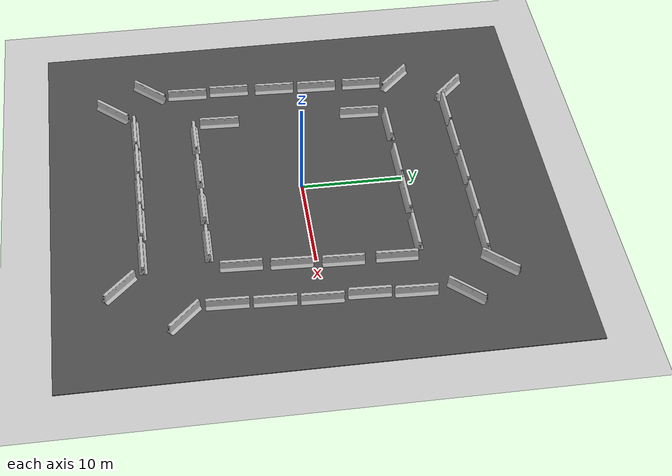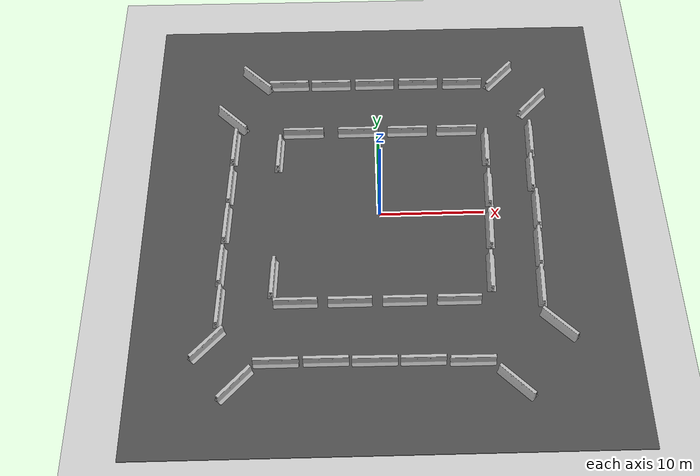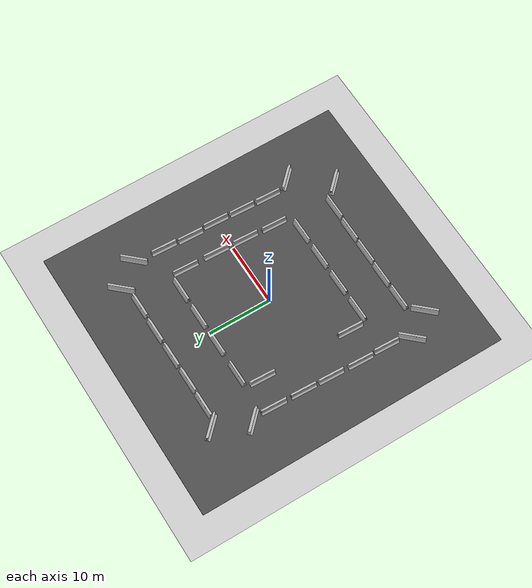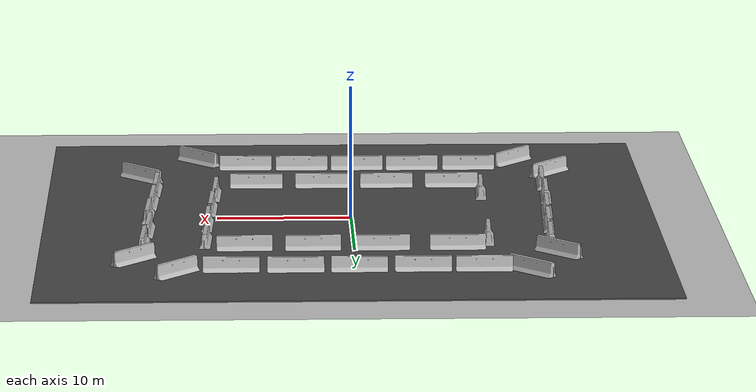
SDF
<sdf version="1.6">
 <world name="default">
  <light name="sun" type="directional">
   <pose>0 0 10 0 -0 0</pose>
   <diffuse>0.8 0.8 0.8 1</diffuse>
   <specular>0.2 0.2 0.2 1</specular>
   <attenuation>
    <range>1000</range>
    <constant>0.9</constant>
    <linear>0.01</linear>
    <quadratic>0.001</quadratic>
   </attenuation>
   <direction>-0.5 0.1 -0.9</direction>
  </light>
  <model name="ground_plane">
   <static>1</static>
   <link name="link">
    <collision name="collision">
     <geometry><plane><normal>0 0 1</normal><size>100 100</size></plane></geometry>
     <surface><friction><ode><mu>100</mu><mu2>50</mu2></ode></friction></surface>
    </collision>
    <visual name="visual">
     <cast_shadows>0</cast_shadows>
     <geometry><plane><normal>0 0 1</normal><size>100 100</size></plane></geometry>
     <material>
      <script><uri>file://media/materials/scripts/gazebo.material</uri><name>Gazebo/Grey</name></script>
     </material>
    </visual>
    <velocity_decay><linear>0</linear><angular>0</angular></velocity_decay>
   </link>
  </model>
  <physics name="default_physics" default="0" type="ode">
   <max_step_size>0.01</max_step_size>
   <real_time_factor>1</real_time_factor>
   <real_time_update_rate>100</real_time_update_rate>
  </physics>
  <scene><ambient>0.4 0.4 0.4 1</ambient><background>0.7 0.7 0.7 1</background><shadows>1</shadows></scene>
  <model name="jersey_barrier">
   <static>1</static>
   <link name="link">
    <visual name="visual">
     <geometry><mesh><uri>model://jersey_barrier/meshes/jersey_barrier.dae</uri></mesh></geometry>
    </visual>
    <collision name="upright">
     <pose>0 0 0.5715 0 -0 0</pose>
     <geometry><box><size>4.06542 0.3063 1.143</size></box></geometry>
    </collision>
    <collision name="base">
     <pose>0 0 0.032258 0 -0 0</pose>
     <geometry><box><size>4.06542 0.8107 0.064516</size></box></geometry>
    </collision>
    <collision name="base2">
     <pose>0 0 0.1 0 -0 0</pose>
     <geometry><box><size>4.06542 0.65 0.1</size></box></geometry>
    </collision>
    <collision name="base3">
     <pose>0 0 0.2 0 -0 0</pose>
     <geometry><box><size>4.06542 0.5 0.1</size></box></geometry>
    </collision>
    <collision name="left-angle">
     <pose>0 -0.224 0.2401 0.9 -0 0</pose>
     <geometry><box><size>4.06542 0.5 0.064516</size></box></geometry>
    </collision>
    <collision name="right-angle">
     <pose>0 0.224 0.2401 -0.9 0 0</pose>
     <geometry><box><size>4.06542 0.5 0.064516</size></box></geometry>
    </collision>
    <velocity_decay><linear>0</linear><angular>0</angular></velocity_decay>
   </link>
   <pose>-8 -10 0 0 -0 0</pose>
  </model>
  <model name="jersey_barrier_0">
   <static>1</static>
   <link name="link">
    <visual name="visual">
     <geometry><mesh><uri>model://jersey_barrier/meshes/jersey_barrier.dae</uri></mesh></geometry>
    </visual>
    <collision name="upright">
     <pose>0 0 0.5715 0 -0 0</pose>
     <geometry><box><size>4.06542 0.3063 1.143</size></box></geometry>
    </collision>
    <collision name="base">
     <pose>0 0 0.032258 0 -0 0</pose>
     <geometry><box><size>4.06542 0.8107 0.064516</size></box></geometry>
    </collision>
    <collision name="base2">
     <pose>0 0 0.1 0 -0 0</pose>
     <geometry><box><size>4.06542 0.65 0.1</size></box></geometry>
    </collision>
    <collision name="base3">
     <pose>0 0 0.2 0 -0 0</pose>
     <geometry><box><size>4.06542 0.5 0.1</size></box></geometry>
    </collision>
    <collision name="left-angle">
     <pose>0 -0.224 0.2401 0.9 -0 0</pose>
     <geometry><box><size>4.06542 0.5 0.064516</size></box></geometry>
    </collision>
    <collision name="right-angle">
     <pose>0 0.224 0.2401 -0.9 0 0</pose>
     <geometry><box><size>4.06542 0.5 0.064516</size></box></geometry>
    </collision>
    <velocity_decay><linear>0</linear><angular>0</angular></velocity_decay>
   </link>
   <pose>-3 -10 0 0 -0 0</pose>
  </model>
  <model name="jersey_barrier_1">
   <static>1</static>
   <link name="link">
    <visual name="visual">
     <geometry><mesh><uri>model://jersey_barrier/meshes/jersey_barrier.dae</uri></mesh></geometry>
    </visual>
    <collision name="upright">
     <pose>0 0 0.5715 0 -0 0</pose>
     <geometry><box><size>4.06542 0.3063 1.143</size></box></geometry>
    </collision>
    <collision name="base">
     <pose>0 0 0.032258 0 -0 0</pose>
     <geometry><box><size>4.06542 0.8107 0.064516</size></box></geometry>
    </collision>
    <collision name="base2">
     <pose>0 0 0.1 0 -0 0</pose>
     <geometry><box><size>4.06542 0.65 0.1</size></box></geometry>
    </collision>
    <collision name="base3">
     <pose>0 0 0.2 0 -0 0</pose>
     <geometry><box><size>4.06542 0.5 0.1</size></box></geometry>
    </collision>
    <collision name="left-angle">
     <pose>0 -0.224 0.2401 0.9 -0 0</pose>
     <geometry><box><size>4.06542 0.5 0.064516</size></box></geometry>
    </collision>
    <collision name="right-angle">
     <pose>0 0.224 0.2401 -0.9 0 0</pose>
     <geometry><box><size>4.06542 0.5 0.064516</size></box></geometry>
    </collision>
    <velocity_decay><linear>0</linear><angular>0</angular></velocity_decay>
   </link>
   <pose>2 -10 0 0 -0 0</pose>
  </model>
  <model name="jersey_barrier_2">
   <static>1</static>
   <link name="link">
    <visual name="visual">
     <geometry><mesh><uri>model://jersey_barrier/meshes/jersey_barrier.dae</uri></mesh></geometry>
    </visual>
    <collision name="upright">
     <pose>0 0 0.5715 0 -0 0</pose>
     <geometry><box><size>4.06542 0.3063 1.143</size></box></geometry>
    </collision>
    <collision name="base">
     <pose>0 0 0.032258 0 -0 0</pose>
     <geometry><box><size>4.06542 0.8107 0.064516</size></box></geometry>
    </collision>
    <collision name="base2">
     <pose>0 0 0.1 0 -0 0</pose>
     <geometry><box><size>4.06542 0.65 0.1</size></box></geometry>
    </collision>
    <collision name="base3">
     <pose>0 0 0.2 0 -0 0</pose>
     <geometry><box><size>4.06542 0.5 0.1</size></box></geometry>
    </collision>
    <collision name="left-angle">
     <pose>0 -0.224 0.2401 0.9 -0 0</pose>
     <geometry><box><size>4.06542 0.5 0.064516</size></box></geometry>
    </collision>
    <collision name="right-angle">
     <pose>0 0.224 0.2401 -0.9 0 0</pose>
     <geometry><box><size>4.06542 0.5 0.064516</size></box></geometry>
    </collision>
    <velocity_decay><linear>0</linear><angular>0</angular></velocity_decay>
   </link>
   <pose>7 -10 0 0 -0 0</pose>
  </model>
  <model name="jersey_barrier_3">
   <static>1</static>
   <link name="link">
    <visual name="visual">
     <geometry><mesh><uri>model://jersey_barrier/meshes/jersey_barrier.dae</uri></mesh></geometry>
    </visual>
    <collision name="upright">
     <pose>0 0 0.5715 0 -0 0</pose>
     <geometry><box><size>4.06542 0.3063 1.143</size></box></geometry>
    </collision>
    <collision name="base">
     <pose>0 0 0.032258 0 -0 0</pose>
     <geometry><box><size>4.06542 0.8107 0.064516</size></box></geometry>
    </collision>
    <collision name="base2">
     <pose>0 0 0.1 0 -0 0</pose>
     <geometry><box><size>4.06542 0.65 0.1</size></box></geometry>
    </collision>
    <collision name="base3">
     <pose>0 0 0.2 0 -0 0</pose>
     <geometry><box><size>4.06542 0.5 0.1</size></box></geometry>
    </collision>
    <collision name="left-angle">
     <pose>0 -0.224 0.2401 0.9 -0 0</pose>
     <geometry><box><size>4.06542 0.5 0.064516</size></box></geometry>
    </collision>
    <collision name="right-angle">
     <pose>0 0.224 0.2401 -0.9 0 0</pose>
     <geometry><box><size>4.06542 0.5 0.064516</size></box></geometry>
    </collision>
    <velocity_decay><linear>0</linear><angular>0</angular></velocity_decay>
   </link>
   <pose>-7.50675 10 0 0 -0 0</pose>
  </model>
  <model name="jersey_barrier_4">
   <static>1</static>
   <link name="link">
    <visual name="visual">
     <geometry><mesh><uri>model://jersey_barrier/meshes/jersey_barrier.dae</uri></mesh></geometry>
    </visual>
    <collision name="upright">
     <pose>0 0 0.5715 0 -0 0</pose>
     <geometry><box><size>4.06542 0.3063 1.143</size></box></geometry>
    </collision>
    <collision name="base">
     <pose>0 0 0.032258 0 -0 0</pose>
     <geometry><box><size>4.06542 0.8107 0.064516</size></box></geometry>
    </collision>
    <collision name="base2">
     <pose>0 0 0.1 0 -0 0</pose>
     <geometry><box><size>4.06542 0.65 0.1</size></box></geometry>
    </collision>
    <collision name="base3">
     <pose>0 0 0.2 0 -0 0</pose>
     <geometry><box><size>4.06542 0.5 0.1</size></box></geometry>
    </collision>
    <collision name="left-angle">
     <pose>0 -0.224 0.2401 0.9 -0 0</pose>
     <geometry><box><size>4.06542 0.5 0.064516</size></box></geometry>
    </collision>
    <collision name="right-angle">
     <pose>0 0.224 0.2401 -0.9 0 0</pose>
     <geometry><box><size>4.06542 0.5 0.064516</size></box></geometry>
    </collision>
    <velocity_decay><linear>0</linear><angular>0</angular></velocity_decay>
   </link>
   <pose>-2 10 0 0 -0 0</pose>
  </model>
  <model name="jersey_barrier_5">
   <static>1</static>
   <link name="link">
    <visual name="visual">
     <geometry><mesh><uri>model://jersey_barrier/meshes/jersey_barrier.dae</uri></mesh></geometry>
    </visual>
    <collision name="upright">
     <pose>0 0 0.5715 0 -0 0</pose>
     <geometry><box><size>4.06542 0.3063 1.143</size></box></geometry>
    </collision>
    <collision name="base">
     <pose>0 0 0.032258 0 -0 0</pose>
     <geometry><box><size>4.06542 0.8107 0.064516</size></box></geometry>
    </collision>
    <collision name="base2">
     <pose>0 0 0.1 0 -0 0</pose>
     <geometry><box><size>4.06542 0.65 0.1</size></box></geometry>
    </collision>
    <collision name="base3">
     <pose>0 0 0.2 0 -0 0</pose>
     <geometry><box><size>4.06542 0.5 0.1</size></box></geometry>
    </collision>
    <collision name="left-angle">
     <pose>0 -0.224 0.2401 0.9 -0 0</pose>
     <geometry><box><size>4.06542 0.5 0.064516</size></box></geometry>
    </collision>
    <collision name="right-angle">
     <pose>0 0.224 0.2401 -0.9 0 0</pose>
     <geometry><box><size>4.06542 0.5 0.064516</size></box></geometry>
    </collision>
    <velocity_decay><linear>0</linear><angular>0</angular></velocity_decay>
   </link>
   <pose>3 10 0 0 -0 0</pose>
  </model>
  <model name="jersey_barrier_6">
   <static>1</static>
   <link name="link">
    <visual name="visual">
     <geometry><mesh><uri>model://jersey_barrier/meshes/jersey_barrier.dae</uri></mesh></geometry>
    </visual>
    <collision name="upright">
     <pose>0 0 0.5715 0 -0 0</pose>
     <geometry><box><size>4.06542 0.3063 1.143</size></box></geometry>
    </collision>
    <collision name="base">
     <pose>0 0 0.032258 0 -0 0</pose>
     <geometry><box><size>4.06542 0.8107 0.064516</size></box></geometry>
    </collision>
    <collision name="base2">
     <pose>0 0 0.1 0 -0 0</pose>
     <geometry><box><size>4.06542 0.65 0.1</size></box></geometry>
    </collision>
    <collision name="base3">
     <pose>0 0 0.2 0 -0 0</pose>
     <geometry><box><size>4.06542 0.5 0.1</size></box></geometry>
    </collision>
    <collision name="left-angle">
     <pose>0 -0.224 0.2401 0.9 -0 0</pose>
     <geometry><box><size>4.06542 0.5 0.064516</size></box></geometry>
    </collision>
    <collision name="right-angle">
     <pose>0 0.224 0.2401 -0.9 0 0</pose>
     <geometry><box><size>4.06542 0.5 0.064516</size></box></geometry>
    </collision>
    <velocity_decay><linear>0</linear><angular>0</angular></velocity_decay>
   </link>
   <pose>8 10 0 0 -0 0</pose>
  </model>
  <model name="asphalt_plane">
   <static>1</static>
   <link name="link">
    <collision name="collision"><geometry><box><size>45.6368 49.6066 0.1</size></box></geometry></collision>
    <visual name="visual">
     <cast_shadows>0</cast_shadows>
     <geometry><box><size>45.6368 49.6066 0.1</size></box></geometry>
     <material>
      <script>
       <uri>model://asphalt_plane/materials/scripts</uri>
       <uri>model://asphalt_plane/materials/textures</uri>
       <name>vrc/asphalt</name>
      </script>
     </material>
    </visual>
    <velocity_decay><linear>0</linear><angular>0</angular></velocity_decay>
   </link>
   <pose>0.088282 -0.097492 0 0 -0 0</pose>
  </model>
  <gravity>0 0 -9.8</gravity>
  <magnetic_field>6e-06 2.3e-05 -4.2e-05</magnetic_field>
  <atmosphere type="adiabatic"/>
  <audio><device>default</device></audio>
  <spherical_coordinates>
   <surface_model>EARTH_WGS84</surface_model>
   <latitude_deg>0</latitude_deg>
   <longitude_deg>0</longitude_deg>
   <elevation>0</elevation>
   <heading_deg>0</heading_deg>
  </spherical_coordinates>
  <model name="jersey_barrier_7">
   <static>1</static>
   <link name="link">
    <visual name="visual">
     <geometry><mesh><uri>model://jersey_barrier/meshes/jersey_barrier.dae</uri></mesh></geometry>
    </visual>
    <collision name="upright">
     <pose>0 0 0.5715 0 -0 0</pose>
     <geometry><box><size>4.06542 0.3063 1.143</size></box></geometry>
    </collision>
    <collision name="base">
     <pose>0 0 0.032258 0 -0 0</pose>
     <geometry><box><size>4.06542 0.8107 0.064516</size></box></geometry>
    </collision>
    <collision name="base2">
     <pose>0 0 0.1 0 -0 0</pose>
     <geometry><box><size>4.06542 0.65 0.1</size></box></geometry>
    </collision>
    <collision name="base3">
     <pose>0 0 0.2 0 -0 0</pose>
     <geometry><box><size>4.06542 0.5 0.1</size></box></geometry>
    </collision>
    <collision name="left-angle">
     <pose>0 -0.224 0.2401 0.9 -0 0</pose>
     <geometry><box><size>4.06542 0.5 0.064516</size></box></geometry>
    </collision>
    <collision name="right-angle">
     <pose>0 0.224 0.2401 -0.9 0 0</pose>
     <geometry><box><size>4.06542 0.5 0.064516</size></box></geometry>
    </collision>
   </link>
   <pose>10.1442 -7.0827 0 0 -0 1.5316</pose>
  </model>
  <model name="jersey_barrier_7_clone">
   <static>1</static>
   <link name="link">
    <visual name="visual">
     <geometry><mesh><uri>model://jersey_barrier/meshes/jersey_barrier.dae</uri></mesh></geometry>
    </visual>
    <collision name="upright">
     <pose>0 0 0.5715 0 -0 0</pose>
     <geometry><box><size>4.06542 0.3063 1.143</size></box></geometry>
    </collision>
    <collision name="base">
     <pose>0 0 0.032258 0 -0 0</pose>
     <geometry><box><size>4.06542 0.8107 0.064516</size></box></geometry>
    </collision>
    <collision name="base2">
     <pose>0 0 0.1 0 -0 0</pose>
     <geometry><box><size>4.06542 0.65 0.1</size></box></geometry>
    </collision>
    <collision name="base3">
     <pose>0 0 0.2 0 -0 0</pose>
     <geometry><box><size>4.06542 0.5 0.1</size></box></geometry>
    </collision>
    <collision name="left-angle">
     <pose>0 -0.224 0.2401 0.9 -0 0</pose>
     <geometry><box><size>4.06542 0.5 0.064516</size></box></geometry>
    </collision>
    <collision name="right-angle">
     <pose>0 0.224 0.2401 -0.9 0 0</pose>
     <geometry><box><size>4.06542 0.5 0.064516</size></box></geometry>
    </collision>
   </link>
   <pose>10.4384 -2.30893 0 0 -0 1.5316</pose>
  </model>
  <model name="jersey_barrier_7_clone_0">
   <static>1</static>
   <link name="link">
    <visual name="visual">
     <geometry><mesh><uri>model://jersey_barrier/meshes/jersey_barrier.dae</uri></mesh></geometry>
    </visual>
    <collision name="upright">
     <pose>0 0 0.5715 0 -0 0</pose>
     <geometry><box><size>4.06542 0.3063 1.143</size></box></geometry>
    </collision>
    <collision name="base">
     <pose>0 0 0.032258 0 -0 0</pose>
     <geometry><box><size>4.06542 0.8107 0.064516</size></box></geometry>
    </collision>
    <collision name="base2">
     <pose>0 0 0.1 0 -0 0</pose>
     <geometry><box><size>4.06542 0.65 0.1</size></box></geometry>
    </collision>
    <collision name="base3">
     <pose>0 0 0.2 0 -0 0</pose>
     <geometry><box><size>4.06542 0.5 0.1</size></box></geometry>
    </collision>
    <collision name="left-angle">
     <pose>0 -0.224 0.2401 0.9 -0 0</pose>
     <geometry><box><size>4.06542 0.5 0.064516</size></box></geometry>
    </collision>
    <collision name="right-angle">
     <pose>0 0.224 0.2401 -0.9 0 0</pose>
     <geometry><box><size>4.06542 0.5 0.064516</size></box></geometry>
    </collision>
   </link>
   <pose>10.7124 2.55807 0 0 -0 1.5316</pose>
  </model>
  <model name="jersey_barrier_7_clone_1">
   <static>1</static>
   <link name="link">
    <visual name="visual">
     <geometry><mesh><uri>model://jersey_barrier/meshes/jersey_barrier.dae</uri></mesh></geometry>
    </visual>
    <collision name="upright">
     <pose>0 0 0.5715 0 -0 0</pose>
     <geometry><box><size>4.06542 0.3063 1.143</size></box></geometry>
    </collision>
    <collision name="base">
     <pose>0 0 0.032258 0 -0 0</pose>
     <geometry><box><size>4.06542 0.8107 0.064516</size></box></geometry>
    </collision>
    <collision name="base2">
     <pose>0 0 0.1 0 -0 0</pose>
     <geometry><box><size>4.06542 0.65 0.1</size></box></geometry>
    </collision>
    <collision name="base3">
     <pose>0 0 0.2 0 -0 0</pose>
     <geometry><box><size>4.06542 0.5 0.1</size></box></geometry>
    </collision>
    <collision name="left-angle">
     <pose>0 -0.224 0.2401 0.9 -0 0</pose>
     <geometry><box><size>4.06542 0.5 0.064516</size></box></geometry>
    </collision>
    <collision name="right-angle">
     <pose>0 0.224 0.2401 -0.9 0 0</pose>
     <geometry><box><size>4.06542 0.5 0.064516</size></box></geometry>
    </collision>
   </link>
   <pose>10.8167 7.65912 0 0 -0 1.5316</pose>
  </model>
  <model name="jersey_barrier_7_clone_1_clone">
   <static>1</static>
   <link name="link">
    <visual name="visual">
     <geometry><mesh><uri>model://jersey_barrier/meshes/jersey_barrier.dae</uri></mesh></geometry>
    </visual>
    <collision name="upright">
     <pose>0 0 0.5715 0 -0 0</pose>
     <geometry><box><size>4.06542 0.3063 1.143</size></box></geometry>
    </collision>
    <collision name="base">
     <pose>0 0 0.032258 0 -0 0</pose>
     <geometry><box><size>4.06542 0.8107 0.064516</size></box></geometry>
    </collision>
    <collision name="base2">
     <pose>0 0 0.1 0 -0 0</pose>
     <geometry><box><size>4.06542 0.65 0.1</size></box></geometry>
    </collision>
    <collision name="base3">
     <pose>0 0 0.2 0 -0 0</pose>
     <geometry><box><size>4.06542 0.5 0.1</size></box></geometry>
    </collision>
    <collision name="left-angle">
     <pose>0 -0.224 0.2401 0.9 -0 0</pose>
     <geometry><box><size>4.06542 0.5 0.064516</size></box></geometry>
    </collision>
    <collision name="right-angle">
     <pose>0 0.224 0.2401 -0.9 0 0</pose>
     <geometry><box><size>4.06542 0.5 0.064516</size></box></geometry>
    </collision>
   </link>
   <pose>-9.88681 7.31742 0 0 -0 1.5316</pose>
  </model>
  <model name="jersey_barrier_7_clone_1_clone_0">
   <static>1</static>
   <link name="link">
    <visual name="visual">
     <geometry><mesh><uri>model://jersey_barrier/meshes/jersey_barrier.dae</uri></mesh></geometry>
    </visual>
    <collision name="upright">
     <pose>0 0 0.5715 0 -0 0</pose>
     <geometry><box><size>4.06542 0.3063 1.143</size></box></geometry>
    </collision>
    <collision name="base">
     <pose>0 0 0.032258 0 -0 0</pose>
     <geometry><box><size>4.06542 0.8107 0.064516</size></box></geometry>
    </collision>
    <collision name="base2">
     <pose>0 0 0.1 0 -0 0</pose>
     <geometry><box><size>4.06542 0.65 0.1</size></box></geometry>
    </collision>
    <collision name="base3">
     <pose>0 0 0.2 0 -0 0</pose>
     <geometry><box><size>4.06542 0.5 0.1</size></box></geometry>
    </collision>
    <collision name="left-angle">
     <pose>0 -0.224 0.2401 0.9 -0 0</pose>
     <geometry><box><size>4.06542 0.5 0.064516</size></box></geometry>
    </collision>
    <collision name="right-angle">
     <pose>0 0.224 0.2401 -0.9 0 0</pose>
     <geometry><box><size>4.06542 0.5 0.064516</size></box></geometry>
    </collision>
   </link>
   <pose>-10.1093 -7.31488 0 0 -0 1.5316</pose>
  </model>
  <model name="jersey_barrier_7_clone_1_clone_1">
   <static>1</static>
   <link name="link">
    <visual name="visual">
     <geometry><mesh><uri>model://jersey_barrier/meshes/jersey_barrier.dae</uri></mesh></geometry>
    </visual>
    <collision name="upright">
     <pose>0 0 0.5715 0 -0 0</pose>
     <geometry><box><size>4.06542 0.3063 1.143</size></box></geometry>
    </collision>
    <collision name="base">
     <pose>0 0 0.032258 0 -0 0</pose>
     <geometry><box><size>4.06542 0.8107 0.064516</size></box></geometry>
    </collision>
    <collision name="base2">
     <pose>0 0 0.1 0 -0 0</pose>
     <geometry><box><size>4.06542 0.65 0.1</size></box></geometry>
    </collision>
    <collision name="base3">
     <pose>0 0 0.2 0 -0 0</pose>
     <geometry><box><size>4.06542 0.5 0.1</size></box></geometry>
    </collision>
    <collision name="left-angle">
     <pose>0 -0.224 0.2401 0.9 -0 0</pose>
     <geometry><box><size>4.06542 0.5 0.064516</size></box></geometry>
    </collision>
    <collision name="right-angle">
     <pose>0 0.224 0.2401 -0.9 0 0</pose>
     <geometry><box><size>4.06542 0.5 0.064516</size></box></geometry>
    </collision>
   </link>
   <pose>-14.3801 8.23059 0 0 -0 1.5316</pose>
  </model>
  <model name="jersey_barrier_7_clone_1_clone_2">
   <static>1</static>
   <link name="link">
    <visual name="visual">
     <geometry><mesh><uri>model://jersey_barrier/meshes/jersey_barrier.dae</uri></mesh></geometry>
    </visual>
    <collision name="upright">
     <pose>0 0 0.5715 0 -0 0</pose>
     <geometry><box><size>4.06542 0.3063 1.143</size></box></geometry>
    </collision>
    <collision name="base">
     <pose>0 0 0.032258 0 -0 0</pose>
     <geometry><box><size>4.06542 0.8107 0.064516</size></box></geometry>
    </collision>
    <collision name="base2">
     <pose>0 0 0.1 0 -0 0</pose>
     <geometry><box><size>4.06542 0.65 0.1</size></box></geometry>
    </collision>
    <collision name="base3">
     <pose>0 0 0.2 0 -0 0</pose>
     <geometry><box><size>4.06542 0.5 0.1</size></box></geometry>
    </collision>
    <collision name="left-angle">
     <pose>0 -0.224 0.2401 0.9 -0 0</pose>
     <geometry><box><size>4.06542 0.5 0.064516</size></box></geometry>
    </collision>
    <collision name="right-angle">
     <pose>0 0.224 0.2401 -0.9 0 0</pose>
     <geometry><box><size>4.06542 0.5 0.064516</size></box></geometry>
    </collision>
   </link>
   <pose>-14.5541 3.41634 0 0 -0 1.5316</pose>
  </model>
  <model name="jersey_barrier_7_clone_1_clone_3">
   <static>1</static>
   <link name="link">
    <visual name="visual">
     <geometry><mesh><uri>model://jersey_barrier/meshes/jersey_barrier.dae</uri></mesh></geometry>
    </visual>
    <collision name="upright">
     <pose>0 0 0.5715 0 -0 0</pose>
     <geometry><box><size>4.06542 0.3063 1.143</size></box></geometry>
    </collision>
    <collision name="base">
     <pose>0 0 0.032258 0 -0 0</pose>
     <geometry><box><size>4.06542 0.8107 0.064516</size></box></geometry>
    </collision>
    <collision name="base2">
     <pose>0 0 0.1 0 -0 0</pose>
     <geometry><box><size>4.06542 0.65 0.1</size></box></geometry>
    </collision>
    <collision name="base3">
     <pose>0 0 0.2 0 -0 0</pose>
     <geometry><box><size>4.06542 0.5 0.1</size></box></geometry>
    </collision>
    <collision name="left-angle">
     <pose>0 -0.224 0.2401 0.9 -0 0</pose>
     <geometry><box><size>4.06542 0.5 0.064516</size></box></geometry>
    </collision>
    <collision name="right-angle">
     <pose>0 0.224 0.2401 -0.9 0 0</pose>
     <geometry><box><size>4.06542 0.5 0.064516</size></box></geometry>
    </collision>
   </link>
   <pose>-14.7486 -1.06823 0 0 -0 1.5316</pose>
  </model>
  <model name="jersey_barrier_7_clone_1_clone_4">
   <static>1</static>
   <link name="link">
    <visual name="visual">
     <geometry><mesh><uri>model://jersey_barrier/meshes/jersey_barrier.dae</uri></mesh></geometry>
    </visual>
    <collision name="upright">
     <pose>0 0 0.5715 0 -0 0</pose>
     <geometry><box><size>4.06542 0.3063 1.143</size></box></geometry>
    </collision>
    <collision name="base">
     <pose>0 0 0.032258 0 -0 0</pose>
     <geometry><box><size>4.06542 0.8107 0.064516</size></box></geometry>
    </collision>
    <collision name="base2">
     <pose>0 0 0.1 0 -0 0</pose>
     <geometry><box><size>4.06542 0.65 0.1</size></box></geometry>
    </collision>
    <collision name="base3">
     <pose>0 0 0.2 0 -0 0</pose>
     <geometry><box><size>4.06542 0.5 0.1</size></box></geometry>
    </collision>
    <collision name="left-angle">
     <pose>0 -0.224 0.2401 0.9 -0 0</pose>
     <geometry><box><size>4.06542 0.5 0.064516</size></box></geometry>
    </collision>
    <collision name="right-angle">
     <pose>0 0.224 0.2401 -0.9 0 0</pose>
     <geometry><box><size>4.06542 0.5 0.064516</size></box></geometry>
    </collision>
   </link>
   <pose>-14.9922 -5.87235 0 0 -0 1.5316</pose>
  </model>
  <model name="jersey_barrier_7_clone_1_clone_5">
   <static>1</static>
   <link name="link">
    <visual name="visual">
     <geometry><mesh><uri>model://jersey_barrier/meshes/jersey_barrier.dae</uri></mesh></geometry>
    </visual>
    <collision name="upright">
     <pose>0 0 0.5715 0 -0 0</pose>
     <geometry><box><size>4.06542 0.3063 1.143</size></box></geometry>
    </collision>
    <collision name="base">
     <pose>0 0 0.032258 0 -0 0</pose>
     <geometry><box><size>4.06542 0.8107 0.064516</size></box></geometry>
    </collision>
    <collision name="base2">
     <pose>0 0 0.1 0 -0 0</pose>
     <geometry><box><size>4.06542 0.65 0.1</size></box></geometry>
    </collision>
    <collision name="base3">
     <pose>0 0 0.2 0 -0 0</pose>
     <geometry><box><size>4.06542 0.5 0.1</size></box></geometry>
    </collision>
    <collision name="left-angle">
     <pose>0 -0.224 0.2401 0.9 -0 0</pose>
     <geometry><box><size>4.06542 0.5 0.064516</size></box></geometry>
    </collision>
    <collision name="right-angle">
     <pose>0 0.224 0.2401 -0.9 0 0</pose>
     <geometry><box><size>4.06542 0.5 0.064516</size></box></geometry>
    </collision>
   </link>
   <pose>-14.959 -10.2795 0 0 -0 1.5316</pose>
  </model>
  <model name="jersey_barrier_6_clone">
   <static>1</static>
   <link name="link">
    <visual name="visual">
     <geometry><mesh><uri>model://jersey_barrier/meshes/jersey_barrier.dae</uri></mesh></geometry>
    </visual>
    <collision name="upright">
     <pose>0 0 0.5715 0 -0 0</pose>
     <geometry><box><size>4.06542 0.3063 1.143</size></box></geometry>
    </collision>
    <collision name="base">
     <pose>0 0 0.032258 0 -0 0</pose>
     <geometry><box><size>4.06542 0.8107 0.064516</size></box></geometry>
    </collision>
    <collision name="base2">
     <pose>0 0 0.1 0 -0 0</pose>
     <geometry><box><size>4.06542 0.65 0.1</size></box></geometry>
    </collision>
    <collision name="base3">
     <pose>0 0 0.2 0 -0 0</pose>
     <geometry><box><size>4.06542 0.5 0.1</size></box></geometry>
    </collision>
    <collision name="left-angle">
     <pose>0 -0.224 0.2401 0.9 -0 0</pose>
     <geometry><box><size>4.06542 0.5 0.064516</size></box></geometry>
    </collision>
    <collision name="right-angle">
     <pose>0 0.224 0.2401 -0.9 0 0</pose>
     <geometry><box><size>4.06542 0.5 0.064516</size></box></geometry>
    </collision>
    <velocity_decay><linear>0</linear><angular>0</angular></velocity_decay>
   </link>
   <pose>8.97438 16.3625 0 0 -0 0</pose>
  </model>
  <model name="jersey_barrier_6_clone_0">
   <static>1</static>
   <link name="link">
    <visual name="visual">
     <geometry><mesh><uri>model://jersey_barrier/meshes/jersey_barrier.dae</uri></mesh></geometry>
    </visual>
    <collision name="upright">
     <pose>0 0 0.5715 0 -0 0</pose>
     <geometry><box><size>4.06542 0.3063 1.143</size></box></geometry>
    </collision>
    <collision name="base">
     <pose>0 0 0.032258 0 -0 0</pose>
     <geometry><box><size>4.06542 0.8107 0.064516</size></box></geometry>
    </collision>
    <collision name="base2">
     <pose>0 0 0.1 0 -0 0</pose>
     <geometry><box><size>4.06542 0.65 0.1</size></box></geometry>
    </collision>
    <collision name="base3">
     <pose>0 0 0.2 0 -0 0</pose>
     <geometry><box><size>4.06542 0.5 0.1</size></box></geometry>
    </collision>
    <collision name="left-angle">
     <pose>0 -0.224 0.2401 0.9 -0 0</pose>
     <geometry><box><size>4.06542 0.5 0.064516</size></box></geometry>
    </collision>
    <collision name="right-angle">
     <pose>0 0.224 0.2401 -0.9 0 0</pose>
     <geometry><box><size>4.06542 0.5 0.064516</size></box></geometry>
    </collision>
    <velocity_decay><linear>0</linear><angular>0</angular></velocity_decay>
   </link>
   <pose>4.36549 16.4491 0 0 -0 0</pose>
  </model>
  <model name="jersey_barrier_6_clone_1">
   <static>1</static>
   <link name="link">
    <visual name="visual">
     <geometry><mesh><uri>model://jersey_barrier/meshes/jersey_barrier.dae</uri></mesh></geometry>
    </visual>
    <collision name="upright">
     <pose>0 0 0.5715 0 -0 0</pose>
     <geometry><box><size>4.06542 0.3063 1.143</size></box></geometry>
    </collision>
    <collision name="base">
     <pose>0 0 0.032258 0 -0 0</pose>
     <geometry><box><size>4.06542 0.8107 0.064516</size></box></geometry>
    </collision>
    <collision name="base2">
     <pose>0 0 0.1 0 -0 0</pose>
     <geometry><box><size>4.06542 0.65 0.1</size></box></geometry>
    </collision>
    <collision name="base3">
     <pose>0 0 0.2 0 -0 0</pose>
     <geometry><box><size>4.06542 0.5 0.1</size></box></geometry>
    </collision>
    <collision name="left-angle">
     <pose>0 -0.224 0.2401 0.9 -0 0</pose>
     <geometry><box><size>4.06542 0.5 0.064516</size></box></geometry>
    </collision>
    <collision name="right-angle">
     <pose>0 0.224 0.2401 -0.9 0 0</pose>
     <geometry><box><size>4.06542 0.5 0.064516</size></box></geometry>
    </collision>
    <velocity_decay><linear>0</linear><angular>0</angular></velocity_decay>
   </link>
   <pose>-0.186767 16.446 0 0 -0 0</pose>
  </model>
  <model name="jersey_barrier_6_clone_2">
   <static>1</static>
   <link name="link">
    <visual name="visual">
     <geometry><mesh><uri>model://jersey_barrier/meshes/jersey_barrier.dae</uri></mesh></geometry>
    </visual>
    <collision name="upright">
     <pose>0 0 0.5715 0 -0 0</pose>
     <geometry><box><size>4.06542 0.3063 1.143</size></box></geometry>
    </collision>
    <collision name="base">
     <pose>0 0 0.032258 0 -0 0</pose>
     <geometry><box><size>4.06542 0.8107 0.064516</size></box></geometry>
    </collision>
    <collision name="base2">
     <pose>0 0 0.1 0 -0 0</pose>
     <geometry><box><size>4.06542 0.65 0.1</size></box></geometry>
    </collision>
    <collision name="base3">
     <pose>0 0 0.2 0 -0 0</pose>
     <geometry><box><size>4.06542 0.5 0.1</size></box></geometry>
    </collision>
    <collision name="left-angle">
     <pose>0 -0.224 0.2401 0.9 -0 0</pose>
     <geometry><box><size>4.06542 0.5 0.064516</size></box></geometry>
    </collision>
    <collision name="right-angle">
     <pose>0 0.224 0.2401 -0.9 0 0</pose>
     <geometry><box><size>4.06542 0.5 0.064516</size></box></geometry>
    </collision>
    <velocity_decay><linear>0</linear><angular>0</angular></velocity_decay>
   </link>
   <pose>-4.72887 16.4044 0 0 -0 0</pose>
  </model>
  <model name="jersey_barrier_6_clone_3">
   <static>1</static>
   <link name="link">
    <visual name="visual">
     <geometry><mesh><uri>model://jersey_barrier/meshes/jersey_barrier.dae</uri></mesh></geometry>
    </visual>
    <collision name="upright">
     <pose>0 0 0.5715 0 -0 0</pose>
     <geometry><box><size>4.06542 0.3063 1.143</size></box></geometry>
    </collision>
    <collision name="base">
     <pose>0 0 0.032258 0 -0 0</pose>
     <geometry><box><size>4.06542 0.8107 0.064516</size></box></geometry>
    </collision>
    <collision name="base2">
     <pose>0 0 0.1 0 -0 0</pose>
     <geometry><box><size>4.06542 0.65 0.1</size></box></geometry>
    </collision>
    <collision name="base3">
     <pose>0 0 0.2 0 -0 0</pose>
     <geometry><box><size>4.06542 0.5 0.1</size></box></geometry>
    </collision>
    <collision name="left-angle">
     <pose>0 -0.224 0.2401 0.9 -0 0</pose>
     <geometry><box><size>4.06542 0.5 0.064516</size></box></geometry>
    </collision>
    <collision name="right-angle">
     <pose>0 0.224 0.2401 -0.9 0 0</pose>
     <geometry><box><size>4.06542 0.5 0.064516</size></box></geometry>
    </collision>
    <velocity_decay><linear>0</linear><angular>0</angular></velocity_decay>
   </link>
   <pose>-9.0937 16.4454 0 0 -0 0</pose>
  </model>
  <model name="jersey_barrier_7_clone_2">
   <static>1</static>
   <link name="link">
    <visual name="visual">
     <geometry><mesh><uri>model://jersey_barrier/meshes/jersey_barrier.dae</uri></mesh></geometry>
    </visual>
    <collision name="upright">
     <pose>0 0 0.5715 0 -0 0</pose>
     <geometry><box><size>4.06542 0.3063 1.143</size></box></geometry>
    </collision>
    <collision name="base">
     <pose>0 0 0.032258 0 -0 0</pose>
     <geometry><box><size>4.06542 0.8107 0.064516</size></box></geometry>
    </collision>
    <collision name="base2">
     <pose>0 0 0.1 0 -0 0</pose>
     <geometry><box><size>4.06542 0.65 0.1</size></box></geometry>
    </collision>
    <collision name="base3">
     <pose>0 0 0.2 0 -0 0</pose>
     <geometry><box><size>4.06542 0.5 0.1</size></box></geometry>
    </collision>
    <collision name="left-angle">
     <pose>0 -0.224 0.2401 0.9 -0 0</pose>
     <geometry><box><size>4.06542 0.5 0.064516</size></box></geometry>
    </collision>
    <collision name="right-angle">
     <pose>0 0.224 0.2401 -0.9 0 0</pose>
     <geometry><box><size>4.06542 0.5 0.064516</size></box></geometry>
    </collision>
   </link>
   <pose>14.6825 -8.81262 0 0 -0 1.5316</pose>
  </model>
  <model name="jersey_barrier_7_clone_3">
   <static>1</static>
   <link name="link">
    <visual name="visual">
     <geometry><mesh><uri>model://jersey_barrier/meshes/jersey_barrier.dae</uri></mesh></geometry>
    </visual>
    <collision name="upright">
     <pose>0 0 0.5715 0 -0 0</pose>
     <geometry><box><size>4.06542 0.3063 1.143</size></box></geometry>
    </collision>
    <collision name="base">
     <pose>0 0 0.032258 0 -0 0</pose>
     <geometry><box><size>4.06542 0.8107 0.064516</size></box></geometry>
    </collision>
    <collision name="base2">
     <pose>0 0 0.1 0 -0 0</pose>
     <geometry><box><size>4.06542 0.65 0.1</size></box></geometry>
    </collision>
    <collision name="base3">
     <pose>0 0 0.2 0 -0 0</pose>
     <geometry><box><size>4.06542 0.5 0.1</size></box></geometry>
    </collision>
    <collision name="left-angle">
     <pose>0 -0.224 0.2401 0.9 -0 0</pose>
     <geometry><box><size>4.06542 0.5 0.064516</size></box></geometry>
    </collision>
    <collision name="right-angle">
     <pose>0 0.224 0.2401 -0.9 0 0</pose>
     <geometry><box><size>4.06542 0.5 0.064516</size></box></geometry>
    </collision>
   </link>
   <pose>14.8943 -4.42382 0 0 -0 1.5316</pose>
  </model>
  <model name="jersey_barrier_7_clone_4">
   <static>1</static>
   <link name="link">
    <visual name="visual">
     <geometry><mesh><uri>model://jersey_barrier/meshes/jersey_barrier.dae</uri></mesh></geometry>
    </visual>
    <collision name="upright">
     <pose>0 0 0.5715 0 -0 0</pose>
     <geometry><box><size>4.06542 0.3063 1.143</size></box></geometry>
    </collision>
    <collision name="base">
     <pose>0 0 0.032258 0 -0 0</pose>
     <geometry><box><size>4.06542 0.8107 0.064516</size></box></geometry>
    </collision>
    <collision name="base2">
     <pose>0 0 0.1 0 -0 0</pose>
     <geometry><box><size>4.06542 0.65 0.1</size></box></geometry>
    </collision>
    <collision name="base3">
     <pose>0 0 0.2 0 -0 0</pose>
     <geometry><box><size>4.06542 0.5 0.1</size></box></geometry>
    </collision>
    <collision name="left-angle">
     <pose>0 -0.224 0.2401 0.9 -0 0</pose>
     <geometry><box><size>4.06542 0.5 0.064516</size></box></geometry>
    </collision>
    <collision name="right-angle">
     <pose>0 0.224 0.2401 -0.9 0 0</pose>
     <geometry><box><size>4.06542 0.5 0.064516</size></box></geometry>
    </collision>
   </link>
   <pose>15.1542 -0.062521 0 0 -0 1.5316</pose>
  </model>
  <model name="jersey_barrier_7_clone_5">
   <static>1</static>
   <link name="link">
    <visual name="visual">
     <geometry><mesh><uri>model://jersey_barrier/meshes/jersey_barrier.dae</uri></mesh></geometry>
    </visual>
    <collision name="upright">
     <pose>0 0 0.5715 0 -0 0</pose>
     <geometry><box><size>4.06542 0.3063 1.143</size></box></geometry>
    </collision>
    <collision name="base">
     <pose>0 0 0.032258 0 -0 0</pose>
     <geometry><box><size>4.06542 0.8107 0.064516</size></box></geometry>
    </collision>
    <collision name="base2">
     <pose>0 0 0.1 0 -0 0</pose>
     <geometry><box><size>4.06542 0.65 0.1</size></box></geometry>
    </collision>
    <collision name="base3">
     <pose>0 0 0.2 0 -0 0</pose>
     <geometry><box><size>4.06542 0.5 0.1</size></box></geometry>
    </collision>
    <collision name="left-angle">
     <pose>0 -0.224 0.2401 0.9 -0 0</pose>
     <geometry><box><size>4.06542 0.5 0.064516</size></box></geometry>
    </collision>
    <collision name="right-angle">
     <pose>0 0.224 0.2401 -0.9 0 0</pose>
     <geometry><box><size>4.06542 0.5 0.064516</size></box></geometry>
    </collision>
   </link>
   <pose>15.0397 4.35414 0 0 -0 1.5316</pose>
  </model>
  <model name="jersey_barrier_7_clone_6">
   <static>1</static>
   <link name="link">
    <visual name="visual">
     <geometry><mesh><uri>model://jersey_barrier/meshes/jersey_barrier.dae</uri></mesh></geometry>
    </visual>
    <collision name="upright">
     <pose>0 0 0.5715 0 -0 0</pose>
     <geometry><box><size>4.06542 0.3063 1.143</size></box></geometry>
    </collision>
    <collision name="base">
     <pose>0 0 0.032258 0 -0 0</pose>
     <geometry><box><size>4.06542 0.8107 0.064516</size></box></geometry>
    </collision>
    <collision name="base2">
     <pose>0 0 0.1 0 -0 0</pose>
     <geometry><box><size>4.06542 0.65 0.1</size></box></geometry>
    </collision>
    <collision name="base3">
     <pose>0 0 0.2 0 -0 0</pose>
     <geometry><box><size>4.06542 0.5 0.1</size></box></geometry>
    </collision>
    <collision name="left-angle">
     <pose>0 -0.224 0.2401 0.9 -0 0</pose>
     <geometry><box><size>4.06542 0.5 0.064516</size></box></geometry>
    </collision>
    <collision name="right-angle">
     <pose>0 0.224 0.2401 -0.9 0 0</pose>
     <geometry><box><size>4.06542 0.5 0.064516</size></box></geometry>
    </collision>
   </link>
   <pose>15.3673 8.67832 0 0 -0 1.5316</pose>
  </model>
  <model name="jersey_barrier_clone">
   <static>1</static>
   <link name="link">
    <visual name="visual">
     <geometry><mesh><uri>model://jersey_barrier/meshes/jersey_barrier.dae</uri></mesh></geometry>
    </visual>
    <collision name="upright">
     <pose>0 0 0.5715 0 -0 0</pose>
     <geometry><box><size>4.06542 0.3063 1.143</size></box></geometry>
    </collision>
    <collision name="base">
     <pose>0 0 0.032258 0 -0 0</pose>
     <geometry><box><size>4.06542 0.8107 0.064516</size></box></geometry>
    </collision>
    <collision name="base2">
     <pose>0 0 0.1 0 -0 0</pose>
     <geometry><box><size>4.06542 0.65 0.1</size></box></geometry>
    </collision>
    <collision name="base3">
     <pose>0 0 0.2 0 -0 0</pose>
     <geometry><box><size>4.06542 0.5 0.1</size></box></geometry>
    </collision>
    <collision name="left-angle">
     <pose>0 -0.224 0.2401 0.9 -0 0</pose>
     <geometry><box><size>4.06542 0.5 0.064516</size></box></geometry>
    </collision>
    <collision name="right-angle">
     <pose>0 0.224 0.2401 -0.9 0 0</pose>
     <geometry><box><size>4.06542 0.5 0.064516</size></box></geometry>
    </collision>
    <velocity_decay><linear>0</linear><angular>0</angular></velocity_decay>
   </link>
   <pose>-9.60671 -16.051 0 0 -0 0</pose>
  </model>
  <model name="jersey_barrier_clone_0">
   <static>1</static>
   <link name="link">
    <visual name="visual">
     <geometry><mesh><uri>model://jersey_barrier/meshes/jersey_barrier.dae</uri></mesh></geometry>
    </visual>
    <collision name="upright">
     <pose>0 0 0.5715 0 -0 0</pose>
     <geometry><box><size>4.06542 0.3063 1.143</size></box></geometry>
    </collision>
    <collision name="base">
     <pose>0 0 0.032258 0 -0 0</pose>
     <geometry><box><size>4.06542 0.8107 0.064516</size></box></geometry>
    </collision>
    <collision name="base2">
     <pose>0 0 0.1 0 -0 0</pose>
     <geometry><box><size>4.06542 0.65 0.1</size></box></geometry>
    </collision>
    <collision name="base3">
     <pose>0 0 0.2 0 -0 0</pose>
     <geometry><box><size>4.06542 0.5 0.1</size></box></geometry>
    </collision>
    <collision name="left-angle">
     <pose>0 -0.224 0.2401 0.9 -0 0</pose>
     <geometry><box><size>4.06542 0.5 0.064516</size></box></geometry>
    </collision>
    <collision name="right-angle">
     <pose>0 0.224 0.2401 -0.9 0 0</pose>
     <geometry><box><size>4.06542 0.5 0.064516</size></box></geometry>
    </collision>
    <velocity_decay><linear>0</linear><angular>0</angular></velocity_decay>
   </link>
   <pose>-5.17894 -16.0195 0 0 -0 0</pose>
  </model>
  <model name="jersey_barrier_clone_1">
   <static>1</static>
   <link name="link">
    <visual name="visual">
     <geometry><mesh><uri>model://jersey_barrier/meshes/jersey_barrier.dae</uri></mesh></geometry>
    </visual>
    <collision name="upright">
     <pose>0 0 0.5715 0 -0 0</pose>
     <geometry><box><size>4.06542 0.3063 1.143</size></box></geometry>
    </collision>
    <collision name="base">
     <pose>0 0 0.032258 0 -0 0</pose>
     <geometry><box><size>4.06542 0.8107 0.064516</size></box></geometry>
    </collision>
    <collision name="base2">
     <pose>0 0 0.1 0 -0 0</pose>
     <geometry><box><size>4.06542 0.65 0.1</size></box></geometry>
    </collision>
    <collision name="base3">
     <pose>0 0 0.2 0 -0 0</pose>
     <geometry><box><size>4.06542 0.5 0.1</size></box></geometry>
    </collision>
    <collision name="left-angle">
     <pose>0 -0.224 0.2401 0.9 -0 0</pose>
     <geometry><box><size>4.06542 0.5 0.064516</size></box></geometry>
    </collision>
    <collision name="right-angle">
     <pose>0 0.224 0.2401 -0.9 0 0</pose>
     <geometry><box><size>4.06542 0.5 0.064516</size></box></geometry>
    </collision>
    <velocity_decay><linear>0</linear><angular>0</angular></velocity_decay>
   </link>
   <pose>-0.872675 -16.1021 0 0 -0 0</pose>
  </model>
  <model name="jersey_barrier_clone_2">
   <static>1</static>
   <link name="link">
    <visual name="visual">
     <geometry><mesh><uri>model://jersey_barrier/meshes/jersey_barrier.dae</uri></mesh></geometry>
    </visual>
    <collision name="upright">
     <pose>0 0 0.5715 0 -0 0</pose>
     <geometry><box><size>4.06542 0.3063 1.143</size></box></geometry>
    </collision>
    <collision name="base">
     <pose>0 0 0.032258 0 -0 0</pose>
     <geometry><box><size>4.06542 0.8107 0.064516</size></box></geometry>
    </collision>
    <collision name="base2">
     <pose>0 0 0.1 0 -0 0</pose>
     <geometry><box><size>4.06542 0.65 0.1</size></box></geometry>
    </collision>
    <collision name="base3">
     <pose>0 0 0.2 0 -0 0</pose>
     <geometry><box><size>4.06542 0.5 0.1</size></box></geometry>
    </collision>
    <collision name="left-angle">
     <pose>0 -0.224 0.2401 0.9 -0 0</pose>
     <geometry><box><size>4.06542 0.5 0.064516</size></box></geometry>
    </collision>
    <collision name="right-angle">
     <pose>0 0.224 0.2401 -0.9 0 0</pose>
     <geometry><box><size>4.06542 0.5 0.064516</size></box></geometry>
    </collision>
    <velocity_decay><linear>0</linear><angular>0</angular></velocity_decay>
   </link>
   <pose>3.43298 -16.132 0 0 -0 0</pose>
  </model>
  <model name="jersey_barrier_clone_3">
   <static>1</static>
   <link name="link">
    <visual name="visual">
     <geometry><mesh><uri>model://jersey_barrier/meshes/jersey_barrier.dae</uri></mesh></geometry>
    </visual>
    <collision name="upright">
     <pose>0 0 0.5715 0 -0 0</pose>
     <geometry><box><size>4.06542 0.3063 1.143</size></box></geometry>
    </collision>
    <collision name="base">
     <pose>0 0 0.032258 0 -0 0</pose>
     <geometry><box><size>4.06542 0.8107 0.064516</size></box></geometry>
    </collision>
    <collision name="base2">
     <pose>0 0 0.1 0 -0 0</pose>
     <geometry><box><size>4.06542 0.65 0.1</size></box></geometry>
    </collision>
    <collision name="base3">
     <pose>0 0 0.2 0 -0 0</pose>
     <geometry><box><size>4.06542 0.5 0.1</size></box></geometry>
    </collision>
    <collision name="left-angle">
     <pose>0 -0.224 0.2401 0.9 -0 0</pose>
     <geometry><box><size>4.06542 0.5 0.064516</size></box></geometry>
    </collision>
    <collision name="right-angle">
     <pose>0 0.224 0.2401 -0.9 0 0</pose>
     <geometry><box><size>4.06542 0.5 0.064516</size></box></geometry>
    </collision>
    <velocity_decay><linear>0</linear><angular>0</angular></velocity_decay>
   </link>
   <pose>7.80452 -16.2737 0 0 -0 0</pose>
  </model>
  <model name="jersey_barrier_clone_4">
   <static>1</static>
   <link name="link">
    <visual name="visual">
     <geometry><mesh><uri>model://jersey_barrier/meshes/jersey_barrier.dae</uri></mesh></geometry>
    </visual>
    <collision name="upright">
     <pose>0 0 0.5715 0 -0 0</pose>
     <geometry><box><size>4.06542 0.3063 1.143</size></box></geometry>
    </collision>
    <collision name="base">
     <pose>0 0 0.032258 0 -0 0</pose>
     <geometry><box><size>4.06542 0.8107 0.064516</size></box></geometry>
    </collision>
    <collision name="base2">
     <pose>0 0 0.1 0 -0 0</pose>
     <geometry><box><size>4.06542 0.65 0.1</size></box></geometry>
    </collision>
    <collision name="base3">
     <pose>0 0 0.2 0 -0 0</pose>
     <geometry><box><size>4.06542 0.5 0.1</size></box></geometry>
    </collision>
    <collision name="left-angle">
     <pose>0 -0.224 0.2401 0.9 -0 0</pose>
     <geometry><box><size>4.06542 0.5 0.064516</size></box></geometry>
    </collision>
    <collision name="right-angle">
     <pose>0 0.224 0.2401 -0.9 0 0</pose>
     <geometry><box><size>4.06542 0.5 0.064516</size></box></geometry>
    </collision>
    <velocity_decay><linear>0</linear><angular>0</angular></velocity_decay>
   </link>
   <pose>11.4908 -18.5483 0 0 0 -0.792377</pose>
  </model>
  <model name="jersey_barrier_clone_4_clone">
   <static>1</static>
   <link name="link">
    <visual name="visual">
     <geometry><mesh><uri>model://jersey_barrier/meshes/jersey_barrier.dae</uri></mesh></geometry>
    </visual>
    <collision name="upright">
     <pose>0 0 0.5715 0 -0 0</pose>
     <geometry><box><size>4.06542 0.3063 1.143</size></box></geometry>
    </collision>
    <collision name="base">
     <pose>0 0 0.032258 0 -0 0</pose>
     <geometry><box><size>4.06542 0.8107 0.064516</size></box></geometry>
    </collision>
    <collision name="base2">
     <pose>0 0 0.1 0 -0 0</pose>
     <geometry><box><size>4.06542 0.65 0.1</size></box></geometry>
    </collision>
    <collision name="base3">
     <pose>0 0 0.2 0 -0 0</pose>
     <geometry><box><size>4.06542 0.5 0.1</size></box></geometry>
    </collision>
    <collision name="left-angle">
     <pose>0 -0.224 0.2401 0.9 -0 0</pose>
     <geometry><box><size>4.06542 0.5 0.064516</size></box></geometry>
    </collision>
    <collision name="right-angle">
     <pose>0 0.224 0.2401 -0.9 0 0</pose>
     <geometry><box><size>4.06542 0.5 0.064516</size></box></geometry>
    </collision>
    <velocity_decay><linear>0</linear><angular>0</angular></velocity_decay>
   </link>
   <pose>15.8712 -12.8663 0 0 0 -0.792377</pose>
  </model>
  <model name="jersey_barrier_clone_4_clone_0">
   <static>1</static>
   <link name="link">
    <visual name="visual">
     <geometry><mesh><uri>model://jersey_barrier/meshes/jersey_barrier.dae</uri></mesh></geometry>
    </visual>
    <collision name="upright">
     <pose>0 0 0.5715 0 -0 0</pose>
     <geometry><box><size>4.06542 0.3063 1.143</size></box></geometry>
    </collision>
    <collision name="base">
     <pose>0 0 0.032258 0 -0 0</pose>
     <geometry><box><size>4.06542 0.8107 0.064516</size></box></geometry>
    </collision>
    <collision name="base2">
     <pose>0 0 0.1 0 -0 0</pose>
     <geometry><box><size>4.06542 0.65 0.1</size></box></geometry>
    </collision>
    <collision name="base3">
     <pose>0 0 0.2 0 -0 0</pose>
     <geometry><box><size>4.06542 0.5 0.1</size></box></geometry>
    </collision>
    <collision name="left-angle">
     <pose>0 -0.224 0.2401 0.9 -0 0</pose>
     <geometry><box><size>4.06542 0.5 0.064516</size></box></geometry>
    </collision>
    <collision name="right-angle">
     <pose>0 0.224 0.2401 -0.9 0 0</pose>
     <geometry><box><size>4.06542 0.5 0.064516</size></box></geometry>
    </collision>
    <velocity_decay><linear>0</linear><angular>0</angular></velocity_decay>
   </link>
   <pose>-14.7266 11.8532 0 0 0 -0.792377</pose>
  </model>
  <model name="jersey_barrier_clone_4_clone_1">
   <static>1</static>
   <link name="link">
    <visual name="visual">
     <geometry><mesh><uri>model://jersey_barrier/meshes/jersey_barrier.dae</uri></mesh></geometry>
    </visual>
    <collision name="upright">
     <pose>0 0 0.5715 0 -0 0</pose>
     <geometry><box><size>4.06542 0.3063 1.143</size></box></geometry>
    </collision>
    <collision name="base">
     <pose>0 0 0.032258 0 -0 0</pose>
     <geometry><box><size>4.06542 0.8107 0.064516</size></box></geometry>
    </collision>
    <collision name="base2">
     <pose>0 0 0.1 0 -0 0</pose>
     <geometry><box><size>4.06542 0.65 0.1</size></box></geometry>
    </collision>
    <collision name="base3">
     <pose>0 0 0.2 0 -0 0</pose>
     <geometry><box><size>4.06542 0.5 0.1</size></box></geometry>
    </collision>
    <collision name="left-angle">
     <pose>0 -0.224 0.2401 0.9 -0 0</pose>
     <geometry><box><size>4.06542 0.5 0.064516</size></box></geometry>
    </collision>
    <collision name="right-angle">
     <pose>0 0.224 0.2401 -0.9 0 0</pose>
     <geometry><box><size>4.06542 0.5 0.064516</size></box></geometry>
    </collision>
    <velocity_decay><linear>0</linear><angular>0</angular></velocity_decay>
   </link>
   <pose>-12.4105 17.2728 0 0 0 -0.792377</pose>
  </model>
  <model name="jersey_barrier_clone_4_clone_2">
   <static>1</static>
   <link name="link">
    <visual name="visual">
     <geometry><mesh><uri>model://jersey_barrier/meshes/jersey_barrier.dae</uri></mesh></geometry>
    </visual>
    <collision name="upright">
     <pose>0 0 0.5715 0 -0 0</pose>
     <geometry><box><size>4.06542 0.3063 1.143</size></box></geometry>
    </collision>
    <collision name="base">
     <pose>0 0 0.032258 0 -0 0</pose>
     <geometry><box><size>4.06542 0.8107 0.064516</size></box></geometry>
    </collision>
    <collision name="base2">
     <pose>0 0 0.1 0 -0 0</pose>
     <geometry><box><size>4.06542 0.65 0.1</size></box></geometry>
    </collision>
    <collision name="base3">
     <pose>0 0 0.2 0 -0 0</pose>
     <geometry><box><size>4.06542 0.5 0.1</size></box></geometry>
    </collision>
    <collision name="left-angle">
     <pose>0 -0.224 0.2401 0.9 -0 0</pose>
     <geometry><box><size>4.06542 0.5 0.064516</size></box></geometry>
    </collision>
    <collision name="right-angle">
     <pose>0 0.224 0.2401 -0.9 0 0</pose>
     <geometry><box><size>4.06542 0.5 0.064516</size></box></geometry>
    </collision>
    <velocity_decay><linear>0</linear><angular>0</angular></velocity_decay>
   </link>
   <pose>-15.8045 -14.1655 0 0 -0 0.826051</pose>
  </model>
  <model name="jersey_barrier_clone_4_clone_2_clone">
   <static>1</static>
   <link name="link">
    <visual name="visual">
     <geometry><mesh><uri>model://jersey_barrier/meshes/jersey_barrier.dae</uri></mesh></geometry>
    </visual>
    <collision name="upright">
     <pose>0 0 0.5715 0 -0 0</pose>
     <geometry><box><size>4.06542 0.3063 1.143</size></box></geometry>
    </collision>
    <collision name="base">
     <pose>0 0 0.032258 0 -0 0</pose>
     <geometry><box><size>4.06542 0.8107 0.064516</size></box></geometry>
    </collision>
    <collision name="base2">
     <pose>0 0 0.1 0 -0 0</pose>
     <geometry><box><size>4.06542 0.65 0.1</size></box></geometry>
    </collision>
    <collision name="base3">
     <pose>0 0 0.2 0 -0 0</pose>
     <geometry><box><size>4.06542 0.5 0.1</size></box></geometry>
    </collision>
    <collision name="left-angle">
     <pose>0 -0.224 0.2401 0.9 -0 0</pose>
     <geometry><box><size>4.06542 0.5 0.064516</size></box></geometry>
    </collision>
    <collision name="right-angle">
     <pose>0 0.224 0.2401 -0.9 0 0</pose>
     <geometry><box><size>4.06542 0.5 0.064516</size></box></geometry>
    </collision>
    <velocity_decay><linear>0</linear><angular>0</angular></velocity_decay>
   </link>
   <pose>-13.1592 -18.1667 0 0 -0 0.826051</pose>
  </model>
  <model name="jersey_barrier_clone_4_clone_2_clone_0">
   <static>1</static>
   <link name="link">
    <visual name="visual">
     <geometry><mesh><uri>model://jersey_barrier/meshes/jersey_barrier.dae</uri></mesh></geometry>
    </visual>
    <collision name="upright">
     <pose>0 0 0.5715 0 -0 0</pose>
     <geometry><box><size>4.06542 0.3063 1.143</size></box></geometry>
    </collision>
    <collision name="base">
     <pose>0 0 0.032258 0 -0 0</pose>
     <geometry><box><size>4.06542 0.8107 0.064516</size></box></geometry>
    </collision>
    <collision name="base2">
     <pose>0 0 0.1 0 -0 0</pose>
     <geometry><box><size>4.06542 0.65 0.1</size></box></geometry>
    </collision>
    <collision name="base3">
     <pose>0 0 0.2 0 -0 0</pose>
     <geometry><box><size>4.06542 0.5 0.1</size></box></geometry>
    </collision>
    <collision name="left-angle">
     <pose>0 -0.224 0.2401 0.9 -0 0</pose>
     <geometry><box><size>4.06542 0.5 0.064516</size></box></geometry>
    </collision>
    <collision name="right-angle">
     <pose>0 0.224 0.2401 -0.9 0 0</pose>
     <geometry><box><size>4.06542 0.5 0.064516</size></box></geometry>
    </collision>
    <velocity_decay><linear>0</linear><angular>0</angular></velocity_decay>
   </link>
   <pose>12.8572 17.2331 0 0 -0 0.826051</pose>
  </model>
  <model name="jersey_barrier_clone_4_clone_2_clone_1">
   <static>1</static>
   <link name="link">
    <visual name="visual">
     <geometry><mesh><uri>model://jersey_barrier/meshes/jersey_barrier.dae</uri></mesh></geometry>
    </visual>
    <collision name="upright">
     <pose>0 0 0.5715 0 -0 0</pose>
     <geometry><box><size>4.06542 0.3063 1.143</size></box></geometry>
    </collision>
    <collision name="base">
     <pose>0 0 0.032258 0 -0 0</pose>
     <geometry><box><size>4.06542 0.8107 0.064516</size></box></geometry>
    </collision>
    <collision name="base2">
     <pose>0 0 0.1 0 -0 0</pose>
     <geometry><box><size>4.06542 0.65 0.1</size></box></geometry>
    </collision>
    <collision name="base3">
     <pose>0 0 0.2 0 -0 0</pose>
     <geometry><box><size>4.06542 0.5 0.1</size></box></geometry>
    </collision>
    <collision name="left-angle">
     <pose>0 -0.224 0.2401 0.9 -0 0</pose>
     <geometry><box><size>4.06542 0.5 0.064516</size></box></geometry>
    </collision>
    <collision name="right-angle">
     <pose>0 0.224 0.2401 -0.9 0 0</pose>
     <geometry><box><size>4.06542 0.5 0.064516</size></box></geometry>
    </collision>
    <velocity_decay><linear>0</linear><angular>0</angular></velocity_decay>
   </link>
   <pose>15.9769 13.3489 0 0 -0 0.826051</pose>
  </model>
 </world>
</sdf>
